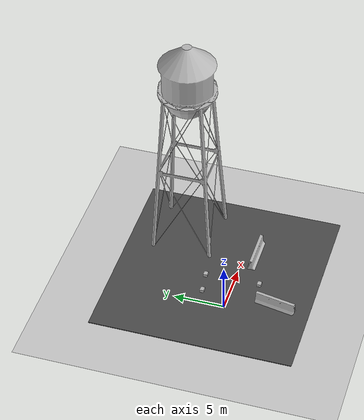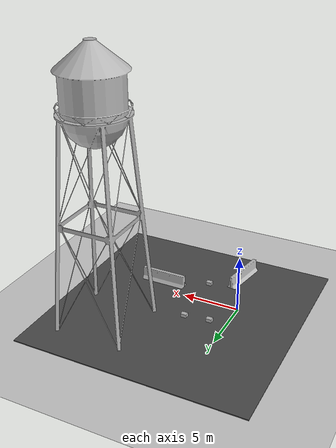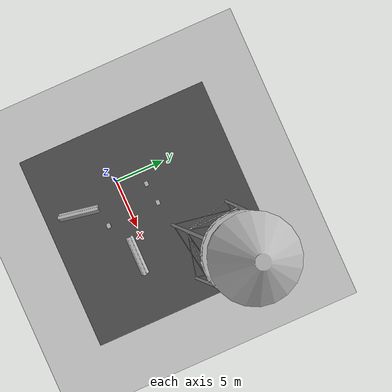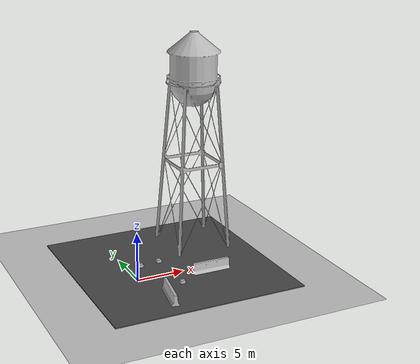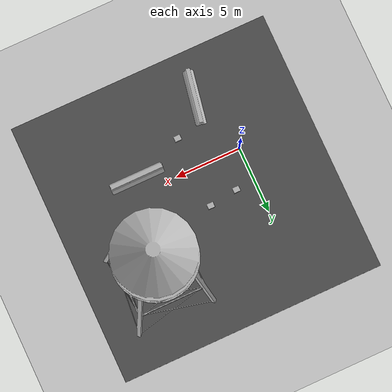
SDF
<sdf version="1.7">
 <world name="default">
  <model name="ground_plane">
   <static>1</static>
   <link name="link">
    <collision name="collision">
     <geometry><plane><normal>0 0 1</normal><size>100 100</size></plane></geometry>
     <surface>
      <contact><collide_bitmask>65535</collide_bitmask></contact>
      <friction><ode><mu>100</mu><mu2>50</mu2></ode></friction>
     </surface>
    </collision>
    <visual name="visual">
     <cast_shadows>0</cast_shadows>
     <geometry><plane><normal>0 0 1</normal><size>100 100</size></plane></geometry>
     <material>
      <script><uri>file://media/materials/scripts/gazebo.material</uri><name>Gazebo/Grey</name></script>
     </material>
    </visual>
   </link>
  </model>
  <gravity>0 0 -9.8</gravity>
  <magnetic_field>6e-06 2.3e-05 -4.2e-05</magnetic_field>
  <atmosphere type="adiabatic"/>
  <physics type="ode">
   <max_step_size>0.001</max_step_size>
   <real_time_factor>1</real_time_factor>
   <real_time_update_rate>1000</real_time_update_rate>
  </physics>
  <scene><ambient>0.4 0.4 0.4 1</ambient><background>0.7 0.7 0.7 1</background><shadows>1</shadows></scene>
  <spherical_coordinates>
   <surface_model>EARTH_WGS84</surface_model>
   <latitude_deg>0</latitude_deg>
   <longitude_deg>0</longitude_deg>
   <elevation>0</elevation>
   <heading_deg>0</heading_deg>
  </spherical_coordinates>
  <model name="asphalt_plane">
   <static>1</static>
   <link name="link">
    <collision name="collision"><geometry><box><size>20 20 0.1</size></box></geometry></collision>
    <visual name="visual">
     <cast_shadows>0</cast_shadows>
     <geometry><box><size>20 20 0.1</size></box></geometry>
     <material>
      <script>
       <uri>model://asphalt_plane/materials/scripts</uri>
       <uri>model://asphalt_plane/materials/textures</uri>
       <name>vrc/asphalt</name>
      </script>
     </material>
    </visual>
   </link>
   <pose>4.36284 1.85243 0 0 -0 0</pose>
  </model>
  <model name="cardboard_box">
   <pose>3.75044 -2.51324 0.199 0 -0 0</pose>
   <link name="link">
    <inertial>
     <mass>2</mass>
     <inertia>
      <ixx>0.0416667</ixx>
      <ixy>0</ixy>
      <ixz>0</ixz>
      <iyy>0.0566667</iyy>
      <iyz>0</iyz>
      <izz>0.0683333</izz>
     </inertia>
    </inertial>
    <collision name="collision">
     <geometry><box><size>0.5 0.4 0.3</size></box></geometry>
     <surface>
      <friction><ode><mu>1</mu><mu2>1</mu2></ode></friction>
      <contact><ode><kp>1e+07</kp><kd>1</kd><min_depth>0.001</min_depth><max_vel>0.1</max_vel></ode></contact>
     </surface>
    </collision>
    <visual name="visual">
     <pose>0 0 -0.15 0 -0 0</pose>
     <geometry>
      <mesh><uri>model://cardboard_box/meshes/cardboard_box.dae</uri><scale>1.25932 1.00745 0.755591</scale></mesh>
     </geometry>
    </visual>
   </link>
  </model>
  <model name="cardboard_box_0">
   <pose>3.61229 2.91026 0.199 0 -0 0</pose>
   <link name="link">
    <inertial>
     <mass>2</mass>
     <inertia>
      <ixx>0.0416667</ixx>
      <ixy>0</ixy>
      <ixz>0</ixz>
      <iyy>0.0566667</iyy>
      <iyz>0</iyz>
      <izz>0.0683333</izz>
     </inertia>
    </inertial>
    <collision name="collision">
     <geometry><box><size>0.5 0.4 0.3</size></box></geometry>
     <surface>
      <friction><ode><mu>1</mu><mu2>1</mu2></ode></friction>
      <contact><ode><kp>1e+07</kp><kd>1</kd><min_depth>0.001</min_depth><max_vel>0.1</max_vel></ode></contact>
     </surface>
    </collision>
    <visual name="visual">
     <pose>0 0 -0.15 0 -0 0</pose>
     <geometry>
      <mesh><uri>model://cardboard_box/meshes/cardboard_box.dae</uri><scale>1.25932 1.00745 0.755591</scale></mesh>
     </geometry>
    </visual>
   </link>
  </model>
  <model name="cardboard_box_1">
   <pose>1.45451 2.61864 0.199 0 -0 0</pose>
   <link name="link">
    <inertial>
     <mass>2</mass>
     <inertia>
      <ixx>0.0416667</ixx>
      <ixy>0</ixy>
      <ixz>0</ixz>
      <iyy>0.0566667</iyy>
      <iyz>0</iyz>
      <izz>0.0683333</izz>
     </inertia>
    </inertial>
    <collision name="collision">
     <geometry><box><size>0.5 0.4 0.3</size></box></geometry>
     <surface>
      <friction><ode><mu>1</mu><mu2>1</mu2></ode></friction>
      <contact><ode><kp>1e+07</kp><kd>1</kd><min_depth>0.001</min_depth><max_vel>0.1</max_vel></ode></contact>
     </surface>
    </collision>
    <visual name="visual">
     <pose>0 0 -0.15 0 -0 0</pose>
     <geometry>
      <mesh><uri>model://cardboard_box/meshes/cardboard_box.dae</uri><scale>1.25932 1.00745 0.755591</scale></mesh>
     </geometry>
    </visual>
   </link>
  </model>
  <model name="jersey_barrier">
   <static>1</static>
   <link name="link">
    <visual name="visual">
     <geometry><mesh><uri>model://jersey_barrier/meshes/jersey_barrier.dae</uri></mesh></geometry>
    </visual>
    <collision name="upright">
     <pose>0 0 0.5715 0 -0 0</pose>
     <geometry><box><size>4.06542 0.3063 1.143</size></box></geometry>
    </collision>
    <collision name="base">
     <pose>0 0 0.032258 0 -0 0</pose>
     <geometry><box><size>4.06542 0.8107 0.064516</size></box></geometry>
    </collision>
    <collision name="base2">
     <pose>0 0 0.1 0 -0 0</pose>
     <geometry><box><size>4.06542 0.65 0.1</size></box></geometry>
    </collision>
    <collision name="base3">
     <pose>0 0 0.2 0 -0 0</pose>
     <geometry><box><size>4.06542 0.5 0.1</size></box></geometry>
    </collision>
    <collision name="left-angle">
     <pose>0 -0.224 0.2401 0.9 -0 0</pose>
     <geometry><box><size>4.06542 0.5 0.064516</size></box></geometry>
    </collision>
    <collision name="right-angle">
     <pose>0 0.224 0.2401 -0.9 0 0</pose>
     <geometry><box><size>4.06542 0.5 0.064516</size></box></geometry>
    </collision>
   </link>
   <pose>7.6093 -1.12097 0 0 -0 0</pose>
  </model>
  <model name="jersey_barrier_clone">
   <static>1</static>
   <link name="link">
    <visual name="visual">
     <geometry><mesh><uri>model://jersey_barrier/meshes/jersey_barrier.dae</uri></mesh></geometry>
    </visual>
    <collision name="upright">
     <pose>0 0 0.5715 0 -0 0</pose>
     <geometry><box><size>4.06542 0.3063 1.143</size></box></geometry>
    </collision>
    <collision name="base">
     <pose>0 0 0.032258 0 -0 0</pose>
     <geometry><box><size>4.06542 0.8107 0.064516</size></box></geometry>
    </collision>
    <collision name="base2">
     <pose>0 0 0.1 0 -0 0</pose>
     <geometry><box><size>4.06542 0.65 0.1</size></box></geometry>
    </collision>
    <collision name="base3">
     <pose>0 0 0.2 0 -0 0</pose>
     <geometry><box><size>4.06542 0.5 0.1</size></box></geometry>
    </collision>
    <collision name="left-angle">
     <pose>0 -0.224 0.2401 0.9 -0 0</pose>
     <geometry><box><size>4.06542 0.5 0.064516</size></box></geometry>
    </collision>
    <collision name="right-angle">
     <pose>0 0.224 0.2401 -0.9 0 0</pose>
     <geometry><box><size>4.06542 0.5 0.064516</size></box></geometry>
    </collision>
   </link>
   <pose>1.39896 -4.72194 0 0 0 -1.75055</pose>
  </model>
  <model name="water_tower">
   <static>1</static>
   <link name="link">
    <collision name="collision">
     <geometry><mesh><uri>model://water_tower/meshes/water_tower.dae</uri></mesh></geometry>
    </collision>
    <visual name="visual">
     <geometry><mesh><uri>model://water_tower/meshes/water_tower.dae</uri></mesh></geometry>
    </visual>
   </link>
   <pose>9.15946 6.2635 0 0 -0 0</pose>
  </model>
 </world>
</sdf>
